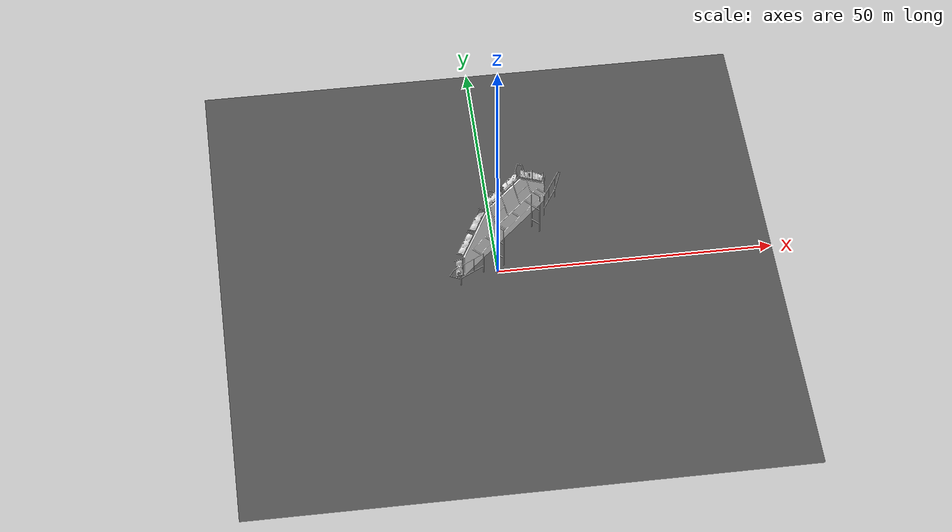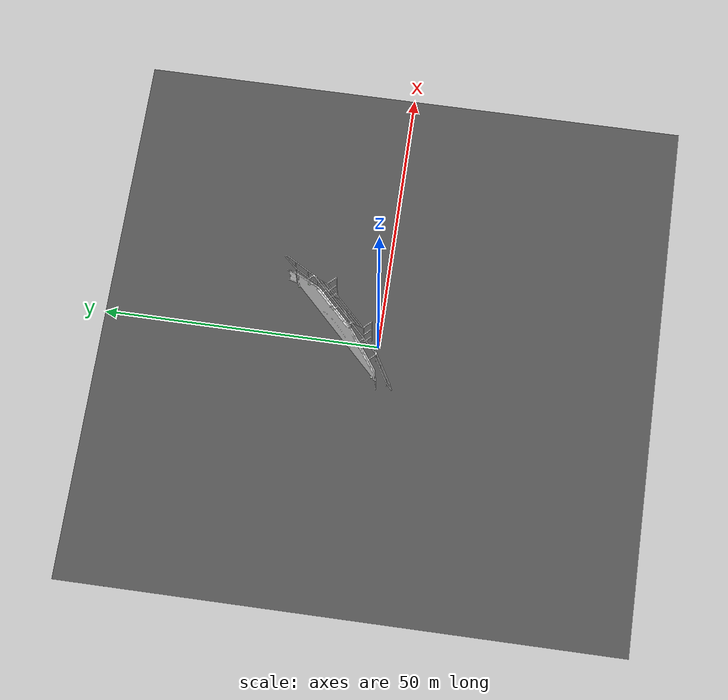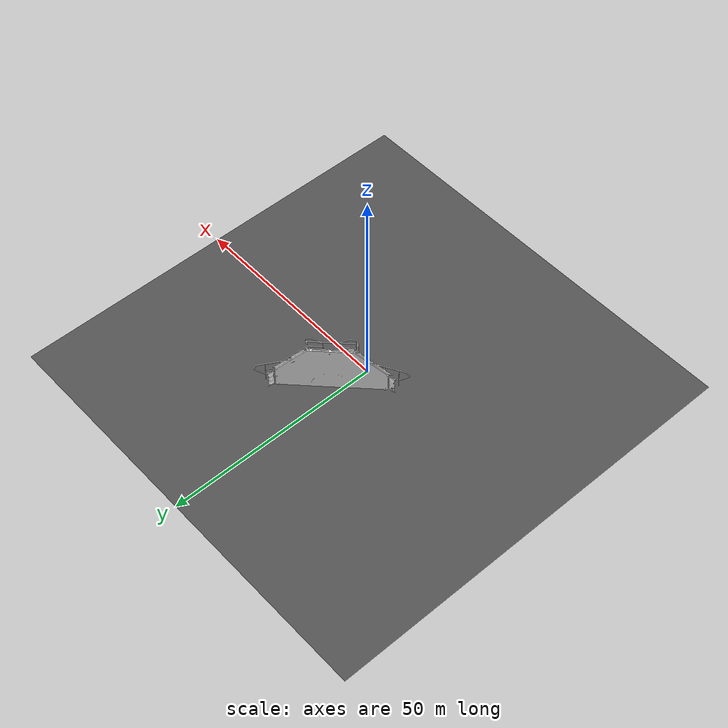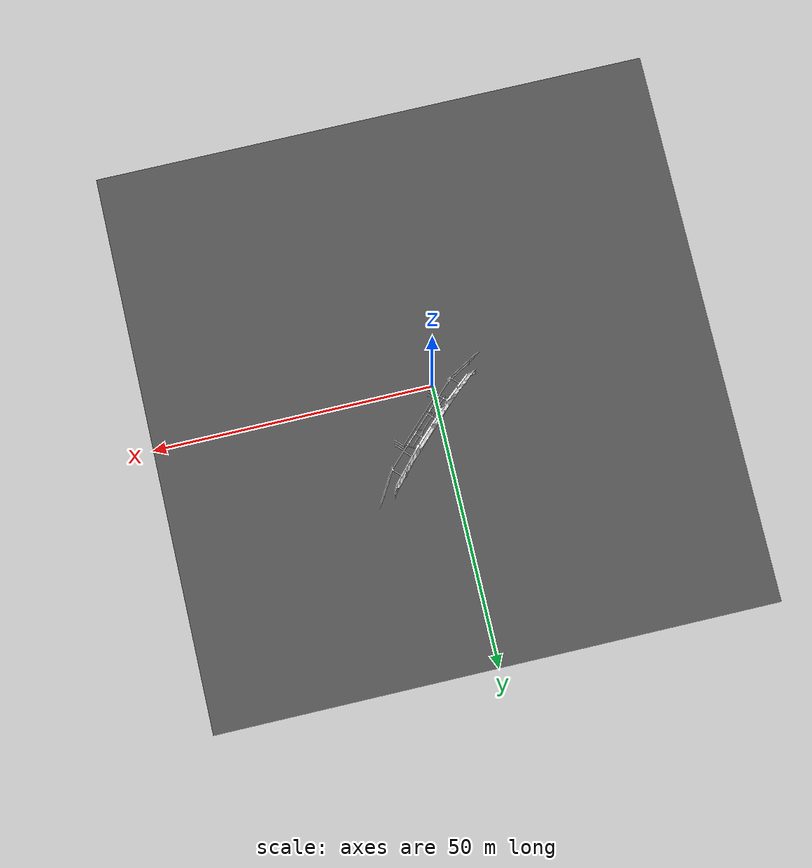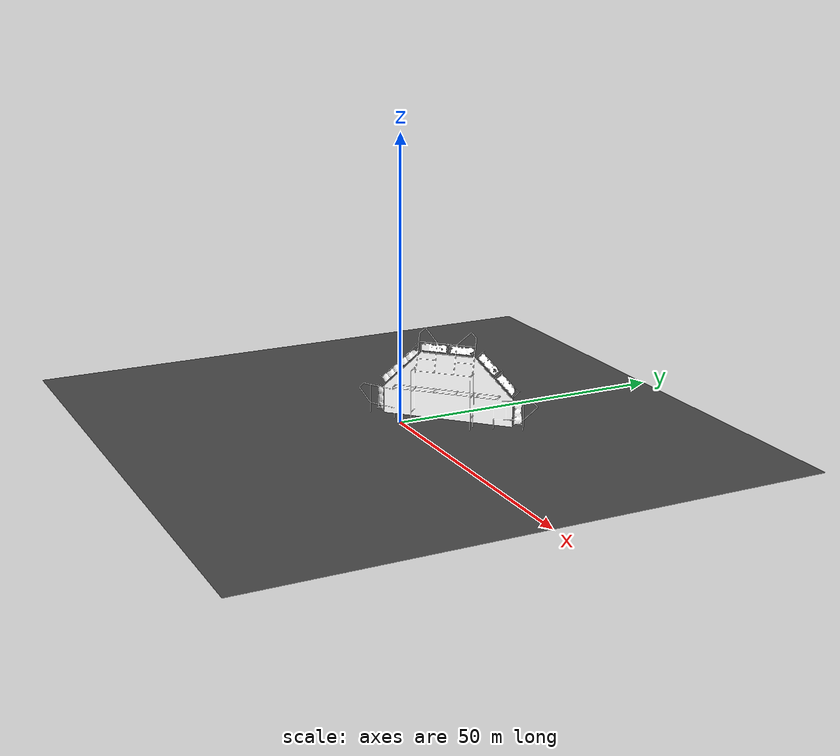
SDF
<!-- File describing the land based simulation world.
Includes:
    - Anafi drone
    - Helipad
    - Asphalt ground
Original source: https://developer.parrot.com/docs/sphinx/worldfile.html# -->

<?xml version="1.0"?>
<sdf version="1.5">
  <world name="land">
    <gui>
      <camera name="user_camera">
        <pose>-8.89 -14.33 12.97 0.0 0.58 0.84</pose>
        <track_visual>
          <static>true</static>
          <use_model_frame>true</use_model_frame>
          <xyz>-3 0 1</xyz>
          <inherit_yaw>true</inherit_yaw>
        </track_visual>
      </camera>
    </gui>

    <!-- GPS location of spawn (forrest outside Dragvoll)-->
    <spherical_coordinates>
      <latitude_deg>63.409433</latitude_deg>
      <longitude_deg>10.461650</longitude_deg>
    </spherical_coordinates>

    <!-- Simulation parameters (left untouched) -->
    <physics type="ode">
      <real_time_update_rate>1000</real_time_update_rate>
      <max_step_size>0.001</max_step_size>
      <real_time_factor>1.0</real_time_factor>
      <max_contacts>20</max_contacts>
      <gravity>0 0 -9.81</gravity>
      <!-- Magnetic field for Trondheim 24.09.2021 (found from
      https://www.ngdc.noaa.gov/geomag/calculators/magcalc.shtml#igrfwmm)
      NB: Format is ENU (east comp, north comp, negative vertical comp) -->
      <magnetic_field>1.0068e-6 13.5438e-6 -50.2880e-6</magnetic_field>
      <ode>
        <solver>
          <type>world</type>
          <min_step_size>0.0001</min_step_size>
          <iters>50</iters>
          <precon_iters>0</precon_iters>
          <sor>1.4</sor>
          <use_dynamic_moi_rescaling>1</use_dynamic_moi_rescaling>
        </solver>
        <constraints>
          <cfm>0</cfm>
          <erp>0.2</erp>
          <contact_max_correcting_vel>100.0</contact_max_correcting_vel>
          <contact_surface_layer>0.001</contact_surface_layer>
        </constraints>
      </ode>
    </physics>

    <!-- Scene specific parameters -->
    <scene>
      <ambient>0.01 0.01 0.01 1.0</ambient>
      <sky>
        <clouds>
          <speed>12</speed>
        </clouds>
      </sky>
      <shadows>0</shadows>
    </scene>

    <!-- Atmospheric parameters -->
    <atmosphere type="adiabatic">
      <temperature>298.15</temperature>
      <pressure>101325</pressure>
      <temperature_gradient>-0.0065</temperature_gradient>
    </atmosphere>

    <!-- Global light source -->
    <light type="directional" name="sun1">
      <pose>50 0 150 0 0 0</pose>
      <diffuse>1 1 1 1</diffuse>
      <specular>.1 .1 .1 1</specular>
      <direction>0.3 0.3 -1</direction>
      <cast_shadows>0</cast_shadows>
    </light>

    <!-- Global light source -->
    <light type="directional" name="sun_diffuse">
      <pose>-50 0 -150 0 0 0</pose>
      <diffuse>0.6 0.6 0.6 1</diffuse>
      <specular>0 0 0 1</specular>
      <direction>-0.3 -0.3 -1</direction>
      <cast_shadows>0</cast_shadows>
    </light>

    <!-- Ground model (from https://github.com/osrf/gazebo_models) -->
    <model name="asphalt_plane">
      <static>true</static>
      <link name="link">
        <collision name="collision">
          <geometry>
            <box>
              <size>100 100 0.0001</size>
            </box>
          </geometry>
        </collision>
        <visual name="visual">
          <cast_shadows>false</cast_shadows>
          <geometry>
            <box>
              <size>100 100 0.0001</size>
            </box>
          </geometry>
          <material>
            <script>
              <uri>model://asphalt_plane/materials/scripts</uri>
              <uri>model://asphalt_plane/materials/textures</uri>
              <name>vrc/asphalt</name>
            </script>
          </material>
        </visual>
      </link>
    </model>

    <!-- Helipad -->
    <model name='helipad'>
      <static>0</static>
      <pose>5 5 0.06 0 0 0.78</pose>
      <link name='link_01'>
        <collision name='collision_01'>
          <mass>4</mass>
          <geometry>
            <mesh>
              <uri>model://helipad/meshes/helipad.dae</uri>
              <scale>1 1 1</scale>
            </mesh>
          </geometry>
          <surface>
            <contact>
              <ode>
                <max_vel>0.0</max_vel>
                <min_depth>0.001</min_depth>
              </ode>
            </contact>
          </surface>
        </collision>
        <visual name='visual_01'>
          <geometry>
            <mesh>
              <uri>model://helipad/meshes/helipad.dae</uri>
              <scale>1 1 1</scale>
            </mesh>
          </geometry>
        </visual>
      </link>
    </model>

    <!-- Drone -->
    <plugin name="fwman" filename="libsphinx_fwman.so">
      <drone
        name="anafi4k"
        firmware="http://plf.parrot.com/sphinx/firmwares/anafi/pc/latest/images/anafi-pc.ext2.zip"
        hardware="anafi4k">
        <machine_params
            low_gpu="0"
            with_front_cam="1"
            simple_front_cam="1"
            with_gimbal="1"
            with_kalamos="0"
            sdcard_serial="__undefined__"
            product_pro="0"/>
        <interface>eth1</interface>
        <stolen_interface></stolen_interface>
      </drone>
      <spawn_point name="default">
        <pose>5 5 0.1 0 0 0.78</pose>
      </spawn_point>
    </plugin>

  </world>
</sdf>
